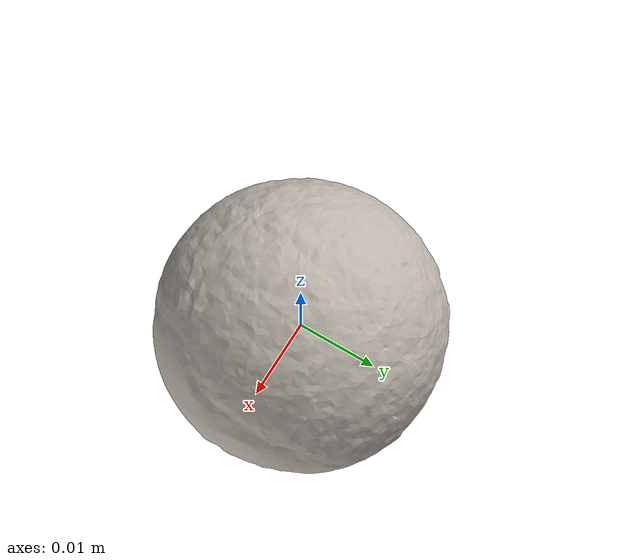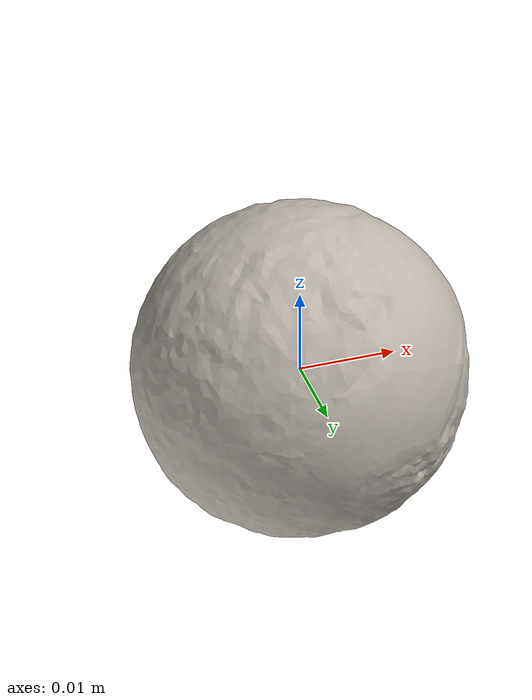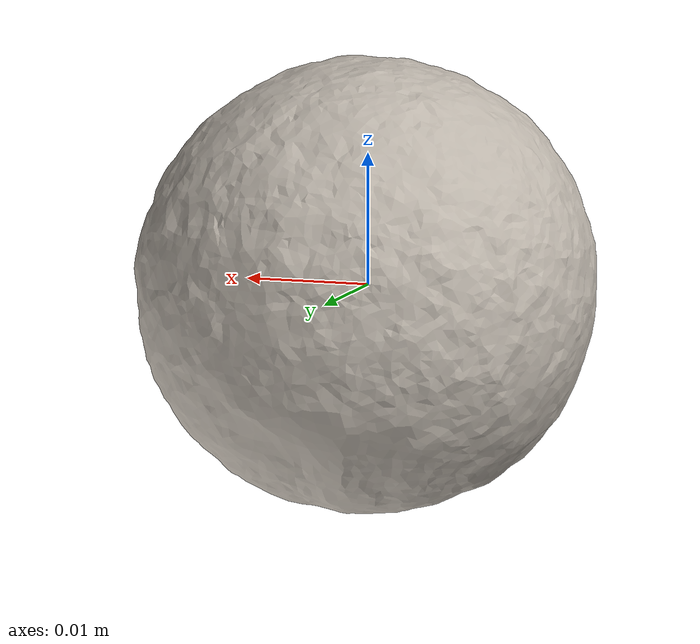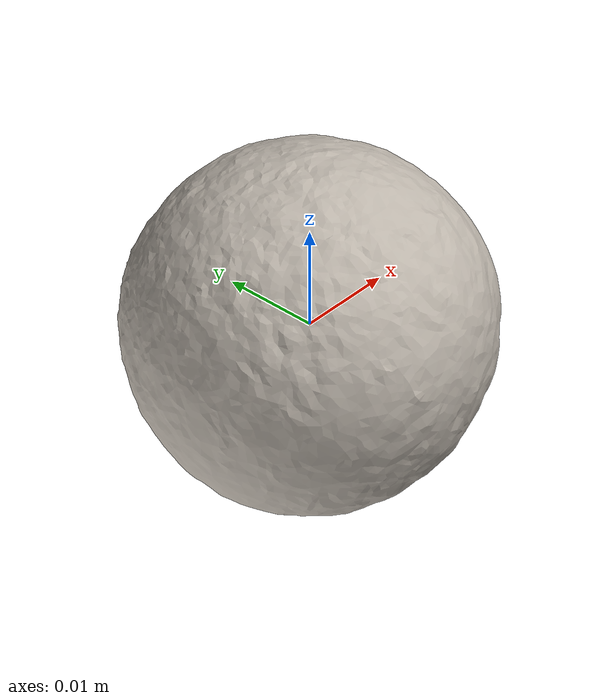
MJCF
<mujoco model="b_marbles">
  <compiler angle="radian" />

  <asset>
    <mesh name="b_marbles_visual_mesh" file="b_marbles/textured.obj" />
    <mesh name="b_marbles_collision_mesh_0" file="b_marbles/textured_coacd_0.stl" />
    <texture name="b_marbles_texture" type="2d" file="b_marbles/texture_map.png" />
    <material name="b_marbles_material" texture="b_marbles_texture" />
  </asset>

  <worldbody>
    <body name="b_marbles" pos="0 0 0" euler="0 0 0">
      <freejoint name="b_marbles_joint" />
      <geom name="b_marbles_visual_geom" type="mesh" mesh="b_marbles_visual_mesh" material="b_marbles_material" pos="0.0 -0.0 -0.0" euler="0 0 0" contype="0" conaffinity="0" group="0" />
      <geom name="b_marbles_collision_geom_0" type="mesh" mesh="b_marbles_collision_mesh_0" pos="0.0 -0.0 -0.0" euler="0 0 0" contype="1" conaffinity="1" group="3" />
      <inertial pos="0 0 0" euler="0 0 0" mass="0.001" diaginertia="0.001 0.001 0.001" />
    </body>
  </worldbody>
</mujoco>
